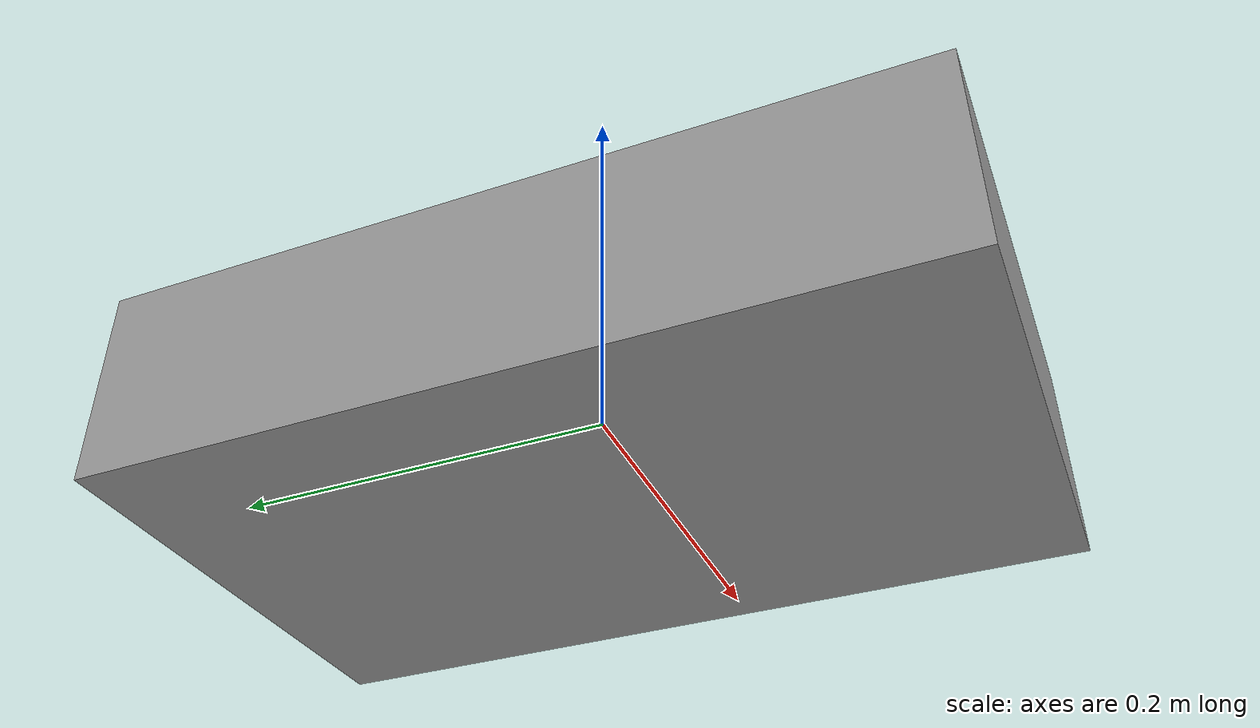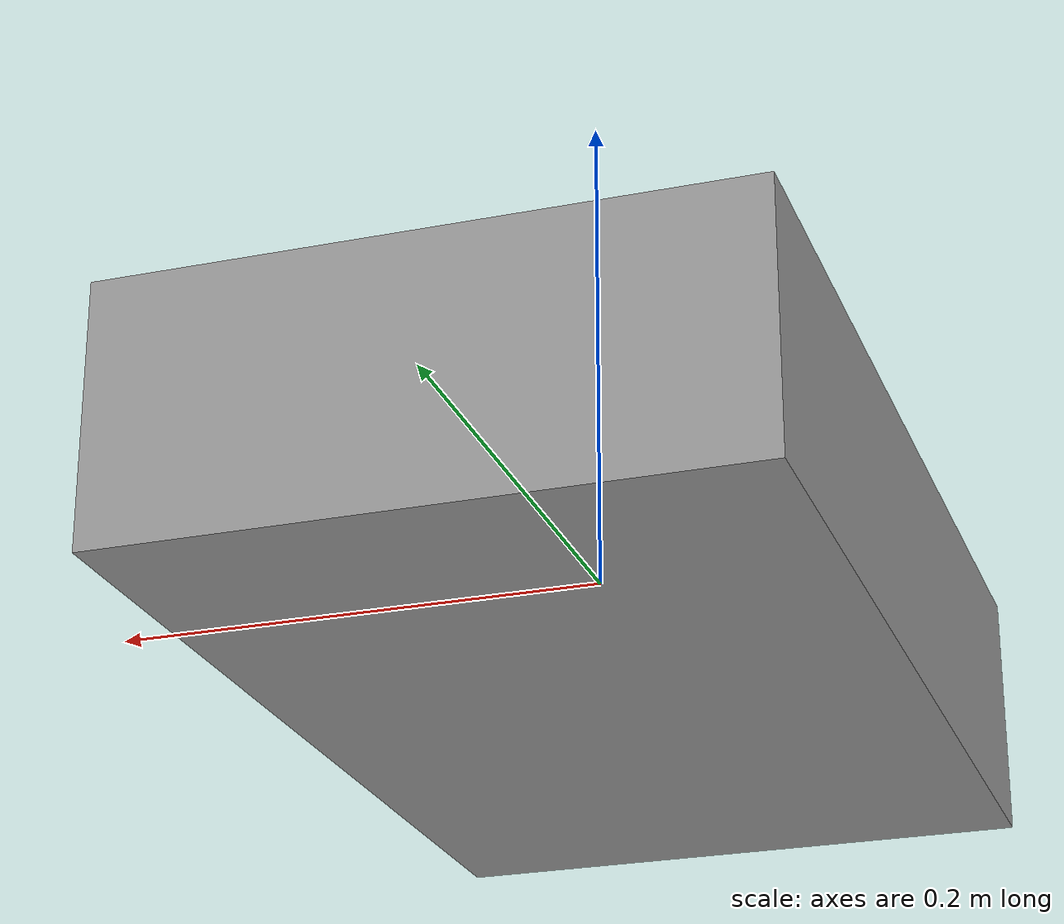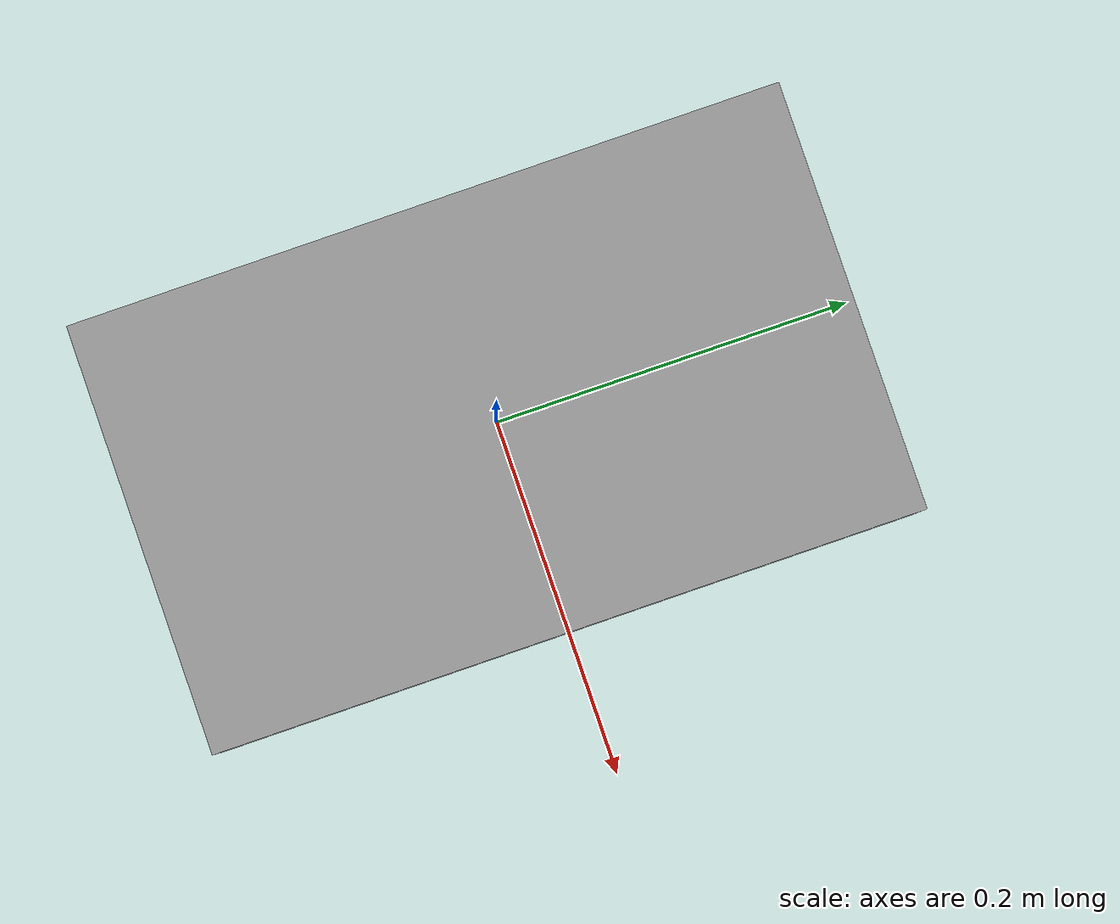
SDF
<?xml version='1.0'?>
<sdf version='1.6'>
    <model name='unit_box'>
      <static>1</static>
      <link name='link'>
        <inertial>
          <mass>1</mass>
          <inertia>
            <ixx>0.166667</ixx>
            <ixy>0</ixy>
            <ixz>0</ixz>
            <iyy>0.166667</iyy>
            <iyz>0</iyz>
            <izz>0.166667</izz>
          </inertia>
        </inertial>
        <visual name='visual'>
          <geometry>
            <box>
              <size>0.24 0.40 0.10</size>
            </box>
          </geometry>
          <material>
            <script>
              <name>Gazebo/Grey</name>
              <uri>file://media/materials/scripts/gazebo.material</uri>
            </script>
          </material>
        </visual>
        <collision name='visual'>
          <geometry>
            <box>
              <size>0.24 0.40 0.10</size>
            </box>
          </geometry>
        </collision>
        <self_collide>0</self_collide>
        <enable_wind>0</enable_wind>
        <kinematic>0</kinematic>
      </link>
    </model>
</sdf>
